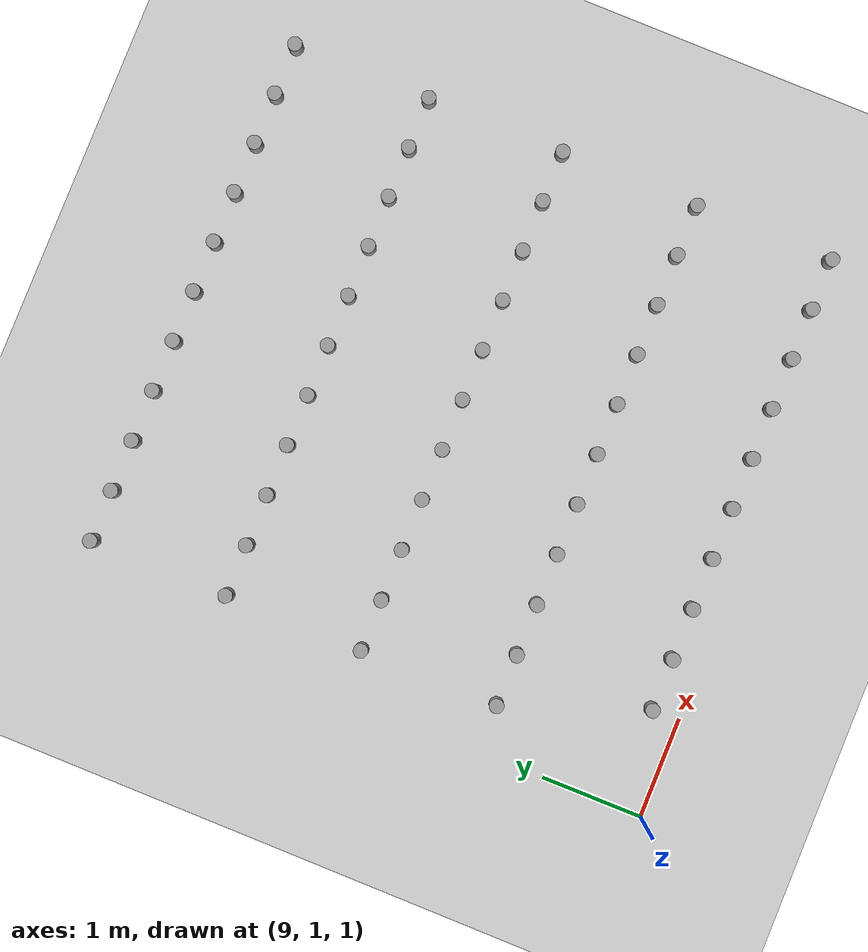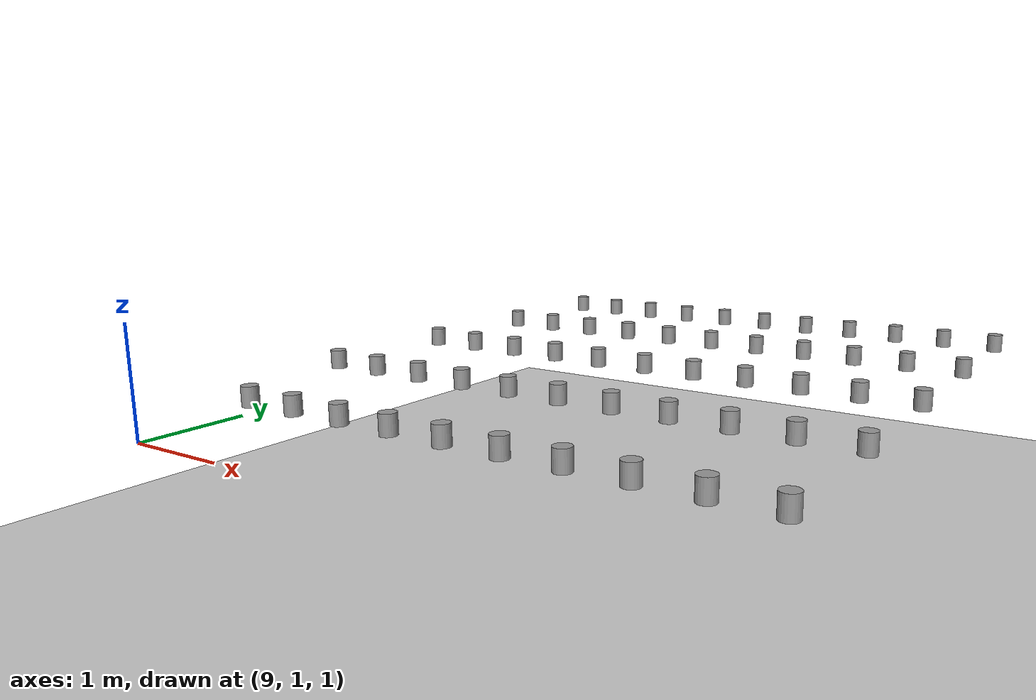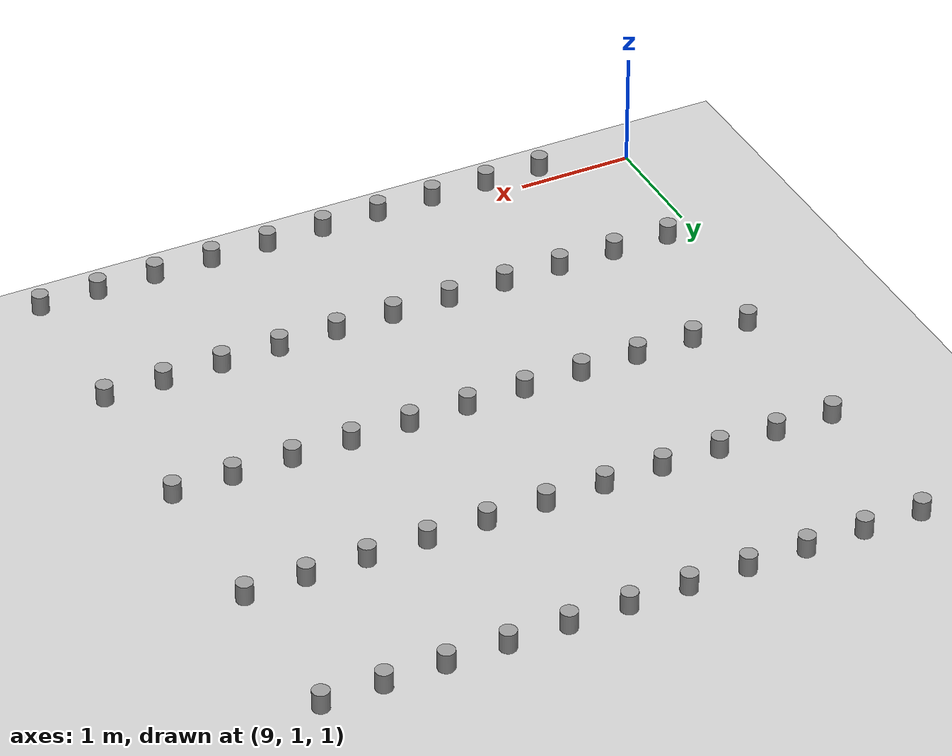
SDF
<sdf version="1.4">
 <world name="default">
  <model name="pot_266">
   <static>1</static>
   <link name="link_0">
    <collision name="collision">
     <geometry><cylinder><length>0.17</length><radius>0.07</radius></cylinder></geometry>
    </collision>
    <visual name="visual">
     <geometry><cylinder><length>0.17</length><radius>0.07</radius></cylinder></geometry>
     <material>
      <script><uri>file://media/materials/scripts/gazebo.material</uri><name>Gazebo/Grey</name></script>
      <emissive>0 0 0 1</emissive>
      <shader type="vertex"><normal_map>__default__</normal_map></shader>
      <specular>0.01 0.01 0.01 1</specular>
      <lighting>1</lighting>
      <ambient>0.1 0.1 0.1 1</ambient>
      <diffuse>0.05 0.05 0.05 1</diffuse>
     </material>
     <cast_shadows>0</cast_shadows>
    </visual>
    <pose>9.524 2.700 1.467 0.0 0.0 0.0</pose>
   </link>
  </model>
  <model name="pot_267">
   <static>1</static>
   <link name="link_0">
    <collision name="collision">
     <geometry><cylinder><length>0.17</length><radius>0.07</radius></cylinder></geometry>
    </collision>
    <visual name="visual">
     <geometry><cylinder><length>0.17</length><radius>0.07</radius></cylinder></geometry>
     <material>
      <script><uri>file://media/materials/scripts/gazebo.material</uri><name>Gazebo/Grey</name></script>
      <emissive>0 0 0 1</emissive>
      <shader type="vertex"><normal_map>__default__</normal_map></shader>
      <specular>0.01 0.01 0.01 1</specular>
      <lighting>1</lighting>
      <ambient>0.1 0.1 0.1 1</ambient>
      <diffuse>0.05 0.05 0.05 1</diffuse>
     </material>
     <cast_shadows>0</cast_shadows>
    </visual>
    <pose>9.524 4.050 1.467 0.0 0.0 0.0</pose>
   </link>
  </model>
  <model name="pot_268">
   <static>1</static>
   <link name="link_0">
    <collision name="collision">
     <geometry><cylinder><length>0.17</length><radius>0.07</radius></cylinder></geometry>
    </collision>
    <visual name="visual">
     <geometry><cylinder><length>0.17</length><radius>0.07</radius></cylinder></geometry>
     <material>
      <script><uri>file://media/materials/scripts/gazebo.material</uri><name>Gazebo/Grey</name></script>
      <emissive>0 0 0 1</emissive>
      <shader type="vertex"><normal_map>__default__</normal_map></shader>
      <specular>0.01 0.01 0.01 1</specular>
      <lighting>1</lighting>
      <ambient>0.1 0.1 0.1 1</ambient>
      <diffuse>0.05 0.05 0.05 1</diffuse>
     </material>
     <cast_shadows>0</cast_shadows>
    </visual>
    <pose>9.524 5.400 1.467 0.0 0.0 0.0</pose>
   </link>
  </model>
  <model name="pot_269">
   <static>1</static>
   <link name="link_0">
    <collision name="collision">
     <geometry><cylinder><length>0.17</length><radius>0.07</radius></cylinder></geometry>
    </collision>
    <visual name="visual">
     <geometry><cylinder><length>0.17</length><radius>0.07</radius></cylinder></geometry>
     <material>
      <script><uri>file://media/materials/scripts/gazebo.material</uri><name>Gazebo/Grey</name></script>
      <emissive>0 0 0 1</emissive>
      <shader type="vertex"><normal_map>__default__</normal_map></shader>
      <specular>0.01 0.01 0.01 1</specular>
      <lighting>1</lighting>
      <ambient>0.1 0.1 0.1 1</ambient>
      <diffuse>0.05 0.05 0.05 1</diffuse>
     </material>
     <cast_shadows>0</cast_shadows>
    </visual>
    <pose>9.524 6.750 1.467 0.0 0.0 0.0</pose>
   </link>
  </model>
  <model name="pot_270">
   <static>1</static>
   <link name="link_0">
    <collision name="collision">
     <geometry><cylinder><length>0.17</length><radius>0.07</radius></cylinder></geometry>
    </collision>
    <visual name="visual">
     <geometry><cylinder><length>0.17</length><radius>0.07</radius></cylinder></geometry>
     <material>
      <script><uri>file://media/materials/scripts/gazebo.material</uri><name>Gazebo/Grey</name></script>
      <emissive>0 0 0 1</emissive>
      <shader type="vertex"><normal_map>__default__</normal_map></shader>
      <specular>0.01 0.01 0.01 1</specular>
      <lighting>1</lighting>
      <ambient>0.1 0.1 0.1 1</ambient>
      <diffuse>0.05 0.05 0.05 1</diffuse>
     </material>
     <cast_shadows>0</cast_shadows>
    </visual>
    <pose>10.024 1.350 1.467 0.0 0.0 0.0</pose>
   </link>
  </model>
  <model name="pot_271">
   <static>1</static>
   <link name="link_0">
    <collision name="collision">
     <geometry><cylinder><length>0.17</length><radius>0.07</radius></cylinder></geometry>
    </collision>
    <visual name="visual">
     <geometry><cylinder><length>0.17</length><radius>0.07</radius></cylinder></geometry>
     <material>
      <script><uri>file://media/materials/scripts/gazebo.material</uri><name>Gazebo/Grey</name></script>
      <emissive>0 0 0 1</emissive>
      <shader type="vertex"><normal_map>__default__</normal_map></shader>
      <specular>0.01 0.01 0.01 1</specular>
      <lighting>1</lighting>
      <ambient>0.1 0.1 0.1 1</ambient>
      <diffuse>0.05 0.05 0.05 1</diffuse>
     </material>
     <cast_shadows>0</cast_shadows>
    </visual>
    <pose>10.024 2.700 1.467 0.0 0.0 0.0</pose>
   </link>
  </model>
  <model name="pot_272">
   <static>1</static>
   <link name="link_0">
    <collision name="collision">
     <geometry><cylinder><length>0.17</length><radius>0.07</radius></cylinder></geometry>
    </collision>
    <visual name="visual">
     <geometry><cylinder><length>0.17</length><radius>0.07</radius></cylinder></geometry>
     <material>
      <script><uri>file://media/materials/scripts/gazebo.material</uri><name>Gazebo/Grey</name></script>
      <emissive>0 0 0 1</emissive>
      <shader type="vertex"><normal_map>__default__</normal_map></shader>
      <specular>0.01 0.01 0.01 1</specular>
      <lighting>1</lighting>
      <ambient>0.1 0.1 0.1 1</ambient>
      <diffuse>0.05 0.05 0.05 1</diffuse>
     </material>
     <cast_shadows>0</cast_shadows>
    </visual>
    <pose>10.024 4.050 1.467 0.0 0.0 0.0</pose>
   </link>
  </model>
  <model name="pot_273">
   <static>1</static>
   <link name="link_0">
    <collision name="collision">
     <geometry><cylinder><length>0.17</length><radius>0.07</radius></cylinder></geometry>
    </collision>
    <visual name="visual">
     <geometry><cylinder><length>0.17</length><radius>0.07</radius></cylinder></geometry>
     <material>
      <script><uri>file://media/materials/scripts/gazebo.material</uri><name>Gazebo/Grey</name></script>
      <emissive>0 0 0 1</emissive>
      <shader type="vertex"><normal_map>__default__</normal_map></shader>
      <specular>0.01 0.01 0.01 1</specular>
      <lighting>1</lighting>
      <ambient>0.1 0.1 0.1 1</ambient>
      <diffuse>0.05 0.05 0.05 1</diffuse>
     </material>
     <cast_shadows>0</cast_shadows>
    </visual>
    <pose>10.024 5.400 1.467 0.0 0.0 0.0</pose>
   </link>
  </model>
  <model name="pot_274">
   <static>1</static>
   <link name="link_0">
    <collision name="collision">
     <geometry><cylinder><length>0.17</length><radius>0.07</radius></cylinder></geometry>
    </collision>
    <visual name="visual">
     <geometry><cylinder><length>0.17</length><radius>0.07</radius></cylinder></geometry>
     <material>
      <script><uri>file://media/materials/scripts/gazebo.material</uri><name>Gazebo/Grey</name></script>
      <emissive>0 0 0 1</emissive>
      <shader type="vertex"><normal_map>__default__</normal_map></shader>
      <specular>0.01 0.01 0.01 1</specular>
      <lighting>1</lighting>
      <ambient>0.1 0.1 0.1 1</ambient>
      <diffuse>0.05 0.05 0.05 1</diffuse>
     </material>
     <cast_shadows>0</cast_shadows>
    </visual>
    <pose>10.024 6.750 1.467 0.0 0.0 0.0</pose>
   </link>
  </model>
  <model name="pot_275">
   <static>1</static>
   <link name="link_0">
    <collision name="collision">
     <geometry><cylinder><length>0.17</length><radius>0.07</radius></cylinder></geometry>
    </collision>
    <visual name="visual">
     <geometry><cylinder><length>0.17</length><radius>0.07</radius></cylinder></geometry>
     <material>
      <script><uri>file://media/materials/scripts/gazebo.material</uri><name>Gazebo/Grey</name></script>
      <emissive>0 0 0 1</emissive>
      <shader type="vertex"><normal_map>__default__</normal_map></shader>
      <specular>0.01 0.01 0.01 1</specular>
      <lighting>1</lighting>
      <ambient>0.1 0.1 0.1 1</ambient>
      <diffuse>0.05 0.05 0.05 1</diffuse>
     </material>
     <cast_shadows>0</cast_shadows>
    </visual>
    <pose>10.524 1.350 1.467 0.0 0.0 0.0</pose>
   </link>
  </model>
  <model name="pot_276">
   <static>1</static>
   <link name="link_0">
    <collision name="collision">
     <geometry><cylinder><length>0.17</length><radius>0.07</radius></cylinder></geometry>
    </collision>
    <visual name="visual">
     <geometry><cylinder><length>0.17</length><radius>0.07</radius></cylinder></geometry>
     <material>
      <script><uri>file://media/materials/scripts/gazebo.material</uri><name>Gazebo/Grey</name></script>
      <emissive>0 0 0 1</emissive>
      <shader type="vertex"><normal_map>__default__</normal_map></shader>
      <specular>0.01 0.01 0.01 1</specular>
      <lighting>1</lighting>
      <ambient>0.1 0.1 0.1 1</ambient>
      <diffuse>0.05 0.05 0.05 1</diffuse>
     </material>
     <cast_shadows>0</cast_shadows>
    </visual>
    <pose>10.524 2.700 1.467 0.0 0.0 0.0</pose>
   </link>
  </model>
  <model name="pot_277">
   <static>1</static>
   <link name="link_0">
    <collision name="collision">
     <geometry><cylinder><length>0.17</length><radius>0.07</radius></cylinder></geometry>
    </collision>
    <visual name="visual">
     <geometry><cylinder><length>0.17</length><radius>0.07</radius></cylinder></geometry>
     <material>
      <script><uri>file://media/materials/scripts/gazebo.material</uri><name>Gazebo/Grey</name></script>
      <emissive>0 0 0 1</emissive>
      <shader type="vertex"><normal_map>__default__</normal_map></shader>
      <specular>0.01 0.01 0.01 1</specular>
      <lighting>1</lighting>
      <ambient>0.1 0.1 0.1 1</ambient>
      <diffuse>0.05 0.05 0.05 1</diffuse>
     </material>
     <cast_shadows>0</cast_shadows>
    </visual>
    <pose>10.524 4.050 1.467 0.0 0.0 0.0</pose>
   </link>
  </model>
  <model name="pot_278">
   <static>1</static>
   <link name="link_0">
    <collision name="collision">
     <geometry><cylinder><length>0.17</length><radius>0.07</radius></cylinder></geometry>
    </collision>
    <visual name="visual">
     <geometry><cylinder><length>0.17</length><radius>0.07</radius></cylinder></geometry>
     <material>
      <script><uri>file://media/materials/scripts/gazebo.material</uri><name>Gazebo/Grey</name></script>
      <emissive>0 0 0 1</emissive>
      <shader type="vertex"><normal_map>__default__</normal_map></shader>
      <specular>0.01 0.01 0.01 1</specular>
      <lighting>1</lighting>
      <ambient>0.1 0.1 0.1 1</ambient>
      <diffuse>0.05 0.05 0.05 1</diffuse>
     </material>
     <cast_shadows>0</cast_shadows>
    </visual>
    <pose>10.524 5.400 1.467 0.0 0.0 0.0</pose>
   </link>
  </model>
  <model name="pot_279">
   <static>1</static>
   <link name="link_0">
    <collision name="collision">
     <geometry><cylinder><length>0.17</length><radius>0.07</radius></cylinder></geometry>
    </collision>
    <visual name="visual">
     <geometry><cylinder><length>0.17</length><radius>0.07</radius></cylinder></geometry>
     <material>
      <script><uri>file://media/materials/scripts/gazebo.material</uri><name>Gazebo/Grey</name></script>
      <emissive>0 0 0 1</emissive>
      <shader type="vertex"><normal_map>__default__</normal_map></shader>
      <specular>0.01 0.01 0.01 1</specular>
      <lighting>1</lighting>
      <ambient>0.1 0.1 0.1 1</ambient>
      <diffuse>0.05 0.05 0.05 1</diffuse>
     </material>
     <cast_shadows>0</cast_shadows>
    </visual>
    <pose>10.524 6.750 1.467 0.0 0.0 0.0</pose>
   </link>
  </model>
  <model name="pot_280">
   <static>1</static>
   <link name="link_0">
    <collision name="collision">
     <geometry><cylinder><length>0.17</length><radius>0.07</radius></cylinder></geometry>
    </collision>
    <visual name="visual">
     <geometry><cylinder><length>0.17</length><radius>0.07</radius></cylinder></geometry>
     <material>
      <script><uri>file://media/materials/scripts/gazebo.material</uri><name>Gazebo/Grey</name></script>
      <emissive>0 0 0 1</emissive>
      <shader type="vertex"><normal_map>__default__</normal_map></shader>
      <specular>0.01 0.01 0.01 1</specular>
      <lighting>1</lighting>
      <ambient>0.1 0.1 0.1 1</ambient>
      <diffuse>0.05 0.05 0.05 1</diffuse>
     </material>
     <cast_shadows>0</cast_shadows>
    </visual>
    <pose>11.024 1.350 1.467 0.0 0.0 0.0</pose>
   </link>
  </model>
  <model name="pot_281">
   <static>1</static>
   <link name="link_0">
    <collision name="collision">
     <geometry><cylinder><length>0.17</length><radius>0.07</radius></cylinder></geometry>
    </collision>
    <visual name="visual">
     <geometry><cylinder><length>0.17</length><radius>0.07</radius></cylinder></geometry>
     <material>
      <script><uri>file://media/materials/scripts/gazebo.material</uri><name>Gazebo/Grey</name></script>
      <emissive>0 0 0 1</emissive>
      <shader type="vertex"><normal_map>__default__</normal_map></shader>
      <specular>0.01 0.01 0.01 1</specular>
      <lighting>1</lighting>
      <ambient>0.1 0.1 0.1 1</ambient>
      <diffuse>0.05 0.05 0.05 1</diffuse>
     </material>
     <cast_shadows>0</cast_shadows>
    </visual>
    <pose>11.024 2.700 1.467 0.0 0.0 0.0</pose>
   </link>
  </model>
  <model name="pot_282">
   <static>1</static>
   <link name="link_0">
    <collision name="collision">
     <geometry><cylinder><length>0.17</length><radius>0.07</radius></cylinder></geometry>
    </collision>
    <visual name="visual">
     <geometry><cylinder><length>0.17</length><radius>0.07</radius></cylinder></geometry>
     <material>
      <script><uri>file://media/materials/scripts/gazebo.material</uri><name>Gazebo/Grey</name></script>
      <emissive>0 0 0 1</emissive>
      <shader type="vertex"><normal_map>__default__</normal_map></shader>
      <specular>0.01 0.01 0.01 1</specular>
      <lighting>1</lighting>
      <ambient>0.1 0.1 0.1 1</ambient>
      <diffuse>0.05 0.05 0.05 1</diffuse>
     </material>
     <cast_shadows>0</cast_shadows>
    </visual>
    <pose>11.024 4.050 1.467 0.0 0.0 0.0</pose>
   </link>
  </model>
  <model name="pot_283">
   <static>1</static>
   <link name="link_0">
    <collision name="collision">
     <geometry><cylinder><length>0.17</length><radius>0.07</radius></cylinder></geometry>
    </collision>
    <visual name="visual">
     <geometry><cylinder><length>0.17</length><radius>0.07</radius></cylinder></geometry>
     <material>
      <script><uri>file://media/materials/scripts/gazebo.material</uri><name>Gazebo/Grey</name></script>
      <emissive>0 0 0 1</emissive>
      <shader type="vertex"><normal_map>__default__</normal_map></shader>
      <specular>0.01 0.01 0.01 1</specular>
      <lighting>1</lighting>
      <ambient>0.1 0.1 0.1 1</ambient>
      <diffuse>0.05 0.05 0.05 1</diffuse>
     </material>
     <cast_shadows>0</cast_shadows>
    </visual>
    <pose>11.024 5.400 1.467 0.0 0.0 0.0</pose>
   </link>
  </model>
  <model name="pot_284">
   <static>1</static>
   <link name="link_0">
    <collision name="collision">
     <geometry><cylinder><length>0.17</length><radius>0.07</radius></cylinder></geometry>
    </collision>
    <visual name="visual">
     <geometry><cylinder><length>0.17</length><radius>0.07</radius></cylinder></geometry>
     <material>
      <script><uri>file://media/materials/scripts/gazebo.material</uri><name>Gazebo/Grey</name></script>
      <emissive>0 0 0 1</emissive>
      <shader type="vertex"><normal_map>__default__</normal_map></shader>
      <specular>0.01 0.01 0.01 1</specular>
      <lighting>1</lighting>
      <ambient>0.1 0.1 0.1 1</ambient>
      <diffuse>0.05 0.05 0.05 1</diffuse>
     </material>
     <cast_shadows>0</cast_shadows>
    </visual>
    <pose>11.024 6.750 1.467 0.0 0.0 0.0</pose>
   </link>
  </model>
  <model name="pot_285">
   <static>1</static>
   <link name="link_0">
    <collision name="collision">
     <geometry><cylinder><length>0.17</length><radius>0.07</radius></cylinder></geometry>
    </collision>
    <visual name="visual">
     <geometry><cylinder><length>0.17</length><radius>0.07</radius></cylinder></geometry>
     <material>
      <script><uri>file://media/materials/scripts/gazebo.material</uri><name>Gazebo/Grey</name></script>
      <emissive>0 0 0 1</emissive>
      <shader type="vertex"><normal_map>__default__</normal_map></shader>
      <specular>0.01 0.01 0.01 1</specular>
      <lighting>1</lighting>
      <ambient>0.1 0.1 0.1 1</ambient>
      <diffuse>0.05 0.05 0.05 1</diffuse>
     </material>
     <cast_shadows>0</cast_shadows>
    </visual>
    <pose>11.524 1.350 1.467 0.0 0.0 0.0</pose>
   </link>
  </model>
  <model name="pot_286">
   <static>1</static>
   <link name="link_0">
    <collision name="collision">
     <geometry><cylinder><length>0.17</length><radius>0.07</radius></cylinder></geometry>
    </collision>
    <visual name="visual">
     <geometry><cylinder><length>0.17</length><radius>0.07</radius></cylinder></geometry>
     <material>
      <script><uri>file://media/materials/scripts/gazebo.material</uri><name>Gazebo/Grey</name></script>
      <emissive>0 0 0 1</emissive>
      <shader type="vertex"><normal_map>__default__</normal_map></shader>
      <specular>0.01 0.01 0.01 1</specular>
      <lighting>1</lighting>
      <ambient>0.1 0.1 0.1 1</ambient>
      <diffuse>0.05 0.05 0.05 1</diffuse>
     </material>
     <cast_shadows>0</cast_shadows>
    </visual>
    <pose>11.524 2.700 1.467 0.0 0.0 0.0</pose>
   </link>
  </model>
  <model name="pot_287">
   <static>1</static>
   <link name="link_0">
    <collision name="collision">
     <geometry><cylinder><length>0.17</length><radius>0.07</radius></cylinder></geometry>
    </collision>
    <visual name="visual">
     <geometry><cylinder><length>0.17</length><radius>0.07</radius></cylinder></geometry>
     <material>
      <script><uri>file://media/materials/scripts/gazebo.material</uri><name>Gazebo/Grey</name></script>
      <emissive>0 0 0 1</emissive>
      <shader type="vertex"><normal_map>__default__</normal_map></shader>
      <specular>0.01 0.01 0.01 1</specular>
      <lighting>1</lighting>
      <ambient>0.1 0.1 0.1 1</ambient>
      <diffuse>0.05 0.05 0.05 1</diffuse>
     </material>
     <cast_shadows>0</cast_shadows>
    </visual>
    <pose>11.524 4.050 1.467 0.0 0.0 0.0</pose>
   </link>
  </model>
  <model name="pot_288">
   <static>1</static>
   <link name="link_0">
    <collision name="collision">
     <geometry><cylinder><length>0.17</length><radius>0.07</radius></cylinder></geometry>
    </collision>
    <visual name="visual">
     <geometry><cylinder><length>0.17</length><radius>0.07</radius></cylinder></geometry>
     <material>
      <script><uri>file://media/materials/scripts/gazebo.material</uri><name>Gazebo/Grey</name></script>
      <emissive>0 0 0 1</emissive>
      <shader type="vertex"><normal_map>__default__</normal_map></shader>
      <specular>0.01 0.01 0.01 1</specular>
      <lighting>1</lighting>
      <ambient>0.1 0.1 0.1 1</ambient>
      <diffuse>0.05 0.05 0.05 1</diffuse>
     </material>
     <cast_shadows>0</cast_shadows>
    </visual>
    <pose>11.524 5.400 1.467 0.0 0.0 0.0</pose>
   </link>
  </model>
  <model name="pot_289">
   <static>1</static>
   <link name="link_0">
    <collision name="collision">
     <geometry><cylinder><length>0.17</length><radius>0.07</radius></cylinder></geometry>
    </collision>
    <visual name="visual">
     <geometry><cylinder><length>0.17</length><radius>0.07</radius></cylinder></geometry>
     <material>
      <script><uri>file://media/materials/scripts/gazebo.material</uri><name>Gazebo/Grey</name></script>
      <emissive>0 0 0 1</emissive>
      <shader type="vertex"><normal_map>__default__</normal_map></shader>
      <specular>0.01 0.01 0.01 1</specular>
      <lighting>1</lighting>
      <ambient>0.1 0.1 0.1 1</ambient>
      <diffuse>0.05 0.05 0.05 1</diffuse>
     </material>
     <cast_shadows>0</cast_shadows>
    </visual>
    <pose>11.524 6.750 1.467 0.0 0.0 0.0</pose>
   </link>
  </model>
  <model name="pot_290">
   <static>1</static>
   <link name="link_0">
    <collision name="collision">
     <geometry><cylinder><length>0.17</length><radius>0.07</radius></cylinder></geometry>
    </collision>
    <visual name="visual">
     <geometry><cylinder><length>0.17</length><radius>0.07</radius></cylinder></geometry>
     <material>
      <script><uri>file://media/materials/scripts/gazebo.material</uri><name>Gazebo/Grey</name></script>
      <emissive>0 0 0 1</emissive>
      <shader type="vertex"><normal_map>__default__</normal_map></shader>
      <specular>0.01 0.01 0.01 1</specular>
      <lighting>1</lighting>
      <ambient>0.1 0.1 0.1 1</ambient>
      <diffuse>0.05 0.05 0.05 1</diffuse>
     </material>
     <cast_shadows>0</cast_shadows>
    </visual>
    <pose>12.024 1.350 1.467 0.0 0.0 0.0</pose>
   </link>
  </model>
  <model name="pot_291">
   <static>1</static>
   <link name="link_0">
    <collision name="collision">
     <geometry><cylinder><length>0.17</length><radius>0.07</radius></cylinder></geometry>
    </collision>
    <visual name="visual">
     <geometry><cylinder><length>0.17</length><radius>0.07</radius></cylinder></geometry>
     <material>
      <script><uri>file://media/materials/scripts/gazebo.material</uri><name>Gazebo/Grey</name></script>
      <emissive>0 0 0 1</emissive>
      <shader type="vertex"><normal_map>__default__</normal_map></shader>
      <specular>0.01 0.01 0.01 1</specular>
      <lighting>1</lighting>
      <ambient>0.1 0.1 0.1 1</ambient>
      <diffuse>0.05 0.05 0.05 1</diffuse>
     </material>
     <cast_shadows>0</cast_shadows>
    </visual>
    <pose>12.024 2.700 1.467 0.0 0.0 0.0</pose>
   </link>
  </model>
  <model name="pot_292">
   <static>1</static>
   <link name="link_0">
    <collision name="collision">
     <geometry><cylinder><length>0.17</length><radius>0.07</radius></cylinder></geometry>
    </collision>
    <visual name="visual">
     <geometry><cylinder><length>0.17</length><radius>0.07</radius></cylinder></geometry>
     <material>
      <script><uri>file://media/materials/scripts/gazebo.material</uri><name>Gazebo/Grey</name></script>
      <emissive>0 0 0 1</emissive>
      <shader type="vertex"><normal_map>__default__</normal_map></shader>
      <specular>0.01 0.01 0.01 1</specular>
      <lighting>1</lighting>
      <ambient>0.1 0.1 0.1 1</ambient>
      <diffuse>0.05 0.05 0.05 1</diffuse>
     </material>
     <cast_shadows>0</cast_shadows>
    </visual>
    <pose>12.024 4.050 1.467 0.0 0.0 0.0</pose>
   </link>
  </model>
  <model name="pot_293">
   <static>1</static>
   <link name="link_0">
    <collision name="collision">
     <geometry><cylinder><length>0.17</length><radius>0.07</radius></cylinder></geometry>
    </collision>
    <visual name="visual">
     <geometry><cylinder><length>0.17</length><radius>0.07</radius></cylinder></geometry>
     <material>
      <script><uri>file://media/materials/scripts/gazebo.material</uri><name>Gazebo/Grey</name></script>
      <emissive>0 0 0 1</emissive>
      <shader type="vertex"><normal_map>__default__</normal_map></shader>
      <specular>0.01 0.01 0.01 1</specular>
      <lighting>1</lighting>
      <ambient>0.1 0.1 0.1 1</ambient>
      <diffuse>0.05 0.05 0.05 1</diffuse>
     </material>
     <cast_shadows>0</cast_shadows>
    </visual>
    <pose>12.024 5.400 1.467 0.0 0.0 0.0</pose>
   </link>
  </model>
  <model name="pot_294">
   <static>1</static>
   <link name="link_0">
    <collision name="collision">
     <geometry><cylinder><length>0.17</length><radius>0.07</radius></cylinder></geometry>
    </collision>
    <visual name="visual">
     <geometry><cylinder><length>0.17</length><radius>0.07</radius></cylinder></geometry>
     <material>
      <script><uri>file://media/materials/scripts/gazebo.material</uri><name>Gazebo/Grey</name></script>
      <emissive>0 0 0 1</emissive>
      <shader type="vertex"><normal_map>__default__</normal_map></shader>
      <specular>0.01 0.01 0.01 1</specular>
      <lighting>1</lighting>
      <ambient>0.1 0.1 0.1 1</ambient>
      <diffuse>0.05 0.05 0.05 1</diffuse>
     </material>
     <cast_shadows>0</cast_shadows>
    </visual>
    <pose>12.024 6.750 1.467 0.0 0.0 0.0</pose>
   </link>
  </model>
  <model name="pot_295">
   <static>1</static>
   <link name="link_0">
    <collision name="collision">
     <geometry><cylinder><length>0.17</length><radius>0.07</radius></cylinder></geometry>
    </collision>
    <visual name="visual">
     <geometry><cylinder><length>0.17</length><radius>0.07</radius></cylinder></geometry>
     <material>
      <script><uri>file://media/materials/scripts/gazebo.material</uri><name>Gazebo/Grey</name></script>
      <emissive>0 0 0 1</emissive>
      <shader type="vertex"><normal_map>__default__</normal_map></shader>
      <specular>0.01 0.01 0.01 1</specular>
      <lighting>1</lighting>
      <ambient>0.1 0.1 0.1 1</ambient>
      <diffuse>0.05 0.05 0.05 1</diffuse>
     </material>
     <cast_shadows>0</cast_shadows>
    </visual>
    <pose>12.524 1.350 1.467 0.0 0.0 0.0</pose>
   </link>
  </model>
  <model name="pot_296">
   <static>1</static>
   <link name="link_0">
    <collision name="collision">
     <geometry><cylinder><length>0.17</length><radius>0.07</radius></cylinder></geometry>
    </collision>
    <visual name="visual">
     <geometry><cylinder><length>0.17</length><radius>0.07</radius></cylinder></geometry>
     <material>
      <script><uri>file://media/materials/scripts/gazebo.material</uri><name>Gazebo/Grey</name></script>
      <emissive>0 0 0 1</emissive>
      <shader type="vertex"><normal_map>__default__</normal_map></shader>
      <specular>0.01 0.01 0.01 1</specular>
      <lighting>1</lighting>
      <ambient>0.1 0.1 0.1 1</ambient>
      <diffuse>0.05 0.05 0.05 1</diffuse>
     </material>
     <cast_shadows>0</cast_shadows>
    </visual>
    <pose>12.524 2.700 1.467 0.0 0.0 0.0</pose>
   </link>
  </model>
  <model name="pot_297">
   <static>1</static>
   <link name="link_0">
    <collision name="collision">
     <geometry><cylinder><length>0.17</length><radius>0.07</radius></cylinder></geometry>
    </collision>
    <visual name="visual">
     <geometry><cylinder><length>0.17</length><radius>0.07</radius></cylinder></geometry>
     <material>
      <script><uri>file://media/materials/scripts/gazebo.material</uri><name>Gazebo/Grey</name></script>
      <emissive>0 0 0 1</emissive>
      <shader type="vertex"><normal_map>__default__</normal_map></shader>
      <specular>0.01 0.01 0.01 1</specular>
      <lighting>1</lighting>
      <ambient>0.1 0.1 0.1 1</ambient>
      <diffuse>0.05 0.05 0.05 1</diffuse>
     </material>
     <cast_shadows>0</cast_shadows>
    </visual>
    <pose>12.524 4.050 1.467 0.0 0.0 0.0</pose>
   </link>
  </model>
  <model name="pot_298">
   <static>1</static>
   <link name="link_0">
    <collision name="collision">
     <geometry><cylinder><length>0.17</length><radius>0.07</radius></cylinder></geometry>
    </collision>
    <visual name="visual">
     <geometry><cylinder><length>0.17</length><radius>0.07</radius></cylinder></geometry>
     <material>
      <script><uri>file://media/materials/scripts/gazebo.material</uri><name>Gazebo/Grey</name></script>
      <emissive>0 0 0 1</emissive>
      <shader type="vertex"><normal_map>__default__</normal_map></shader>
      <specular>0.01 0.01 0.01 1</specular>
      <lighting>1</lighting>
      <ambient>0.1 0.1 0.1 1</ambient>
      <diffuse>0.05 0.05 0.05 1</diffuse>
     </material>
     <cast_shadows>0</cast_shadows>
    </visual>
    <pose>12.524 5.400 1.467 0.0 0.0 0.0</pose>
   </link>
  </model>
  <model name="pot_299">
   <static>1</static>
   <link name="link_0">
    <collision name="collision">
     <geometry><cylinder><length>0.17</length><radius>0.07</radius></cylinder></geometry>
    </collision>
    <visual name="visual">
     <geometry><cylinder><length>0.17</length><radius>0.07</radius></cylinder></geometry>
     <material>
      <script><uri>file://media/materials/scripts/gazebo.material</uri><name>Gazebo/Grey</name></script>
      <emissive>0 0 0 1</emissive>
      <shader type="vertex"><normal_map>__default__</normal_map></shader>
      <specular>0.01 0.01 0.01 1</specular>
      <lighting>1</lighting>
      <ambient>0.1 0.1 0.1 1</ambient>
      <diffuse>0.05 0.05 0.05 1</diffuse>
     </material>
     <cast_shadows>0</cast_shadows>
    </visual>
    <pose>12.524 6.750 1.467 0.0 0.0 0.0</pose>
   </link>
  </model>
  <model name="pot_300">
   <static>1</static>
   <link name="link_0">
    <collision name="collision">
     <geometry><cylinder><length>0.17</length><radius>0.07</radius></cylinder></geometry>
    </collision>
    <visual name="visual">
     <geometry><cylinder><length>0.17</length><radius>0.07</radius></cylinder></geometry>
     <material>
      <script><uri>file://media/materials/scripts/gazebo.material</uri><name>Gazebo/Grey</name></script>
      <emissive>0 0 0 1</emissive>
      <shader type="vertex"><normal_map>__default__</normal_map></shader>
      <specular>0.01 0.01 0.01 1</specular>
      <lighting>1</lighting>
      <ambient>0.1 0.1 0.1 1</ambient>
      <diffuse>0.05 0.05 0.05 1</diffuse>
     </material>
     <cast_shadows>0</cast_shadows>
    </visual>
    <pose>13.024 1.350 1.467 0.0 0.0 0.0</pose>
   </link>
  </model>
  <model name="pot_301">
   <static>1</static>
   <link name="link_0">
    <collision name="collision">
     <geometry><cylinder><length>0.17</length><radius>0.07</radius></cylinder></geometry>
    </collision>
    <visual name="visual">
     <geometry><cylinder><length>0.17</length><radius>0.07</radius></cylinder></geometry>
     <material>
      <script><uri>file://media/materials/scripts/gazebo.material</uri><name>Gazebo/Grey</name></script>
      <emissive>0 0 0 1</emissive>
      <shader type="vertex"><normal_map>__default__</normal_map></shader>
      <specular>0.01 0.01 0.01 1</specular>
      <lighting>1</lighting>
      <ambient>0.1 0.1 0.1 1</ambient>
      <diffuse>0.05 0.05 0.05 1</diffuse>
     </material>
     <cast_shadows>0</cast_shadows>
    </visual>
    <pose>13.024 2.700 1.467 0.0 0.0 0.0</pose>
   </link>
  </model>
  <model name="pot_302">
   <static>1</static>
   <link name="link_0">
    <collision name="collision">
     <geometry><cylinder><length>0.17</length><radius>0.07</radius></cylinder></geometry>
    </collision>
    <visual name="visual">
     <geometry><cylinder><length>0.17</length><radius>0.07</radius></cylinder></geometry>
     <material>
      <script><uri>file://media/materials/scripts/gazebo.material</uri><name>Gazebo/Grey</name></script>
      <emissive>0 0 0 1</emissive>
      <shader type="vertex"><normal_map>__default__</normal_map></shader>
      <specular>0.01 0.01 0.01 1</specular>
      <lighting>1</lighting>
      <ambient>0.1 0.1 0.1 1</ambient>
      <diffuse>0.05 0.05 0.05 1</diffuse>
     </material>
     <cast_shadows>0</cast_shadows>
    </visual>
    <pose>13.024 4.050 1.467 0.0 0.0 0.0</pose>
   </link>
  </model>
  <model name="pot_303">
   <static>1</static>
   <link name="link_0">
    <collision name="collision">
     <geometry><cylinder><length>0.17</length><radius>0.07</radius></cylinder></geometry>
    </collision>
    <visual name="visual">
     <geometry><cylinder><length>0.17</length><radius>0.07</radius></cylinder></geometry>
     <material>
      <script><uri>file://media/materials/scripts/gazebo.material</uri><name>Gazebo/Grey</name></script>
      <emissive>0 0 0 1</emissive>
      <shader type="vertex"><normal_map>__default__</normal_map></shader>
      <specular>0.01 0.01 0.01 1</specular>
      <lighting>1</lighting>
      <ambient>0.1 0.1 0.1 1</ambient>
      <diffuse>0.05 0.05 0.05 1</diffuse>
     </material>
     <cast_shadows>0</cast_shadows>
    </visual>
    <pose>13.024 5.400 1.467 0.0 0.0 0.0</pose>
   </link>
  </model>
  <model name="pot_304">
   <static>1</static>
   <link name="link_0">
    <collision name="collision">
     <geometry><cylinder><length>0.17</length><radius>0.07</radius></cylinder></geometry>
    </collision>
    <visual name="visual">
     <geometry><cylinder><length>0.17</length><radius>0.07</radius></cylinder></geometry>
     <material>
      <script><uri>file://media/materials/scripts/gazebo.material</uri><name>Gazebo/Grey</name></script>
      <emissive>0 0 0 1</emissive>
      <shader type="vertex"><normal_map>__default__</normal_map></shader>
      <specular>0.01 0.01 0.01 1</specular>
      <lighting>1</lighting>
      <ambient>0.1 0.1 0.1 1</ambient>
      <diffuse>0.05 0.05 0.05 1</diffuse>
     </material>
     <cast_shadows>0</cast_shadows>
    </visual>
    <pose>13.024 6.750 1.467 0.0 0.0 0.0</pose>
   </link>
  </model>
  <model name="pot_305">
   <static>1</static>
   <link name="link_0">
    <collision name="collision">
     <geometry><cylinder><length>0.17</length><radius>0.07</radius></cylinder></geometry>
    </collision>
    <visual name="visual">
     <geometry><cylinder><length>0.17</length><radius>0.07</radius></cylinder></geometry>
     <material>
      <script><uri>file://media/materials/scripts/gazebo.material</uri><name>Gazebo/Grey</name></script>
      <emissive>0 0 0 1</emissive>
      <shader type="vertex"><normal_map>__default__</normal_map></shader>
      <specular>0.01 0.01 0.01 1</specular>
      <lighting>1</lighting>
      <ambient>0.1 0.1 0.1 1</ambient>
      <diffuse>0.05 0.05 0.05 1</diffuse>
     </material>
     <cast_shadows>0</cast_shadows>
    </visual>
    <pose>13.524 1.350 1.467 0.0 0.0 0.0</pose>
   </link>
  </model>
  <model name="pot_306">
   <static>1</static>
   <link name="link_0">
    <collision name="collision">
     <geometry><cylinder><length>0.17</length><radius>0.07</radius></cylinder></geometry>
    </collision>
    <visual name="visual">
     <geometry><cylinder><length>0.17</length><radius>0.07</radius></cylinder></geometry>
     <material>
      <script><uri>file://media/materials/scripts/gazebo.material</uri><name>Gazebo/Grey</name></script>
      <emissive>0 0 0 1</emissive>
      <shader type="vertex"><normal_map>__default__</normal_map></shader>
      <specular>0.01 0.01 0.01 1</specular>
      <lighting>1</lighting>
      <ambient>0.1 0.1 0.1 1</ambient>
      <diffuse>0.05 0.05 0.05 1</diffuse>
     </material>
     <cast_shadows>0</cast_shadows>
    </visual>
    <pose>13.524 2.700 1.467 0.0 0.0 0.0</pose>
   </link>
  </model>
  <model name="pot_307">
   <static>1</static>
   <link name="link_0">
    <collision name="collision">
     <geometry><cylinder><length>0.17</length><radius>0.07</radius></cylinder></geometry>
    </collision>
    <visual name="visual">
     <geometry><cylinder><length>0.17</length><radius>0.07</radius></cylinder></geometry>
     <material>
      <script><uri>file://media/materials/scripts/gazebo.material</uri><name>Gazebo/Grey</name></script>
      <emissive>0 0 0 1</emissive>
      <shader type="vertex"><normal_map>__default__</normal_map></shader>
      <specular>0.01 0.01 0.01 1</specular>
      <lighting>1</lighting>
      <ambient>0.1 0.1 0.1 1</ambient>
      <diffuse>0.05 0.05 0.05 1</diffuse>
     </material>
     <cast_shadows>0</cast_shadows>
    </visual>
    <pose>13.524 4.050 1.467 0.0 0.0 0.0</pose>
   </link>
  </model>
  <model name="pot_308">
   <static>1</static>
   <link name="link_0">
    <collision name="collision">
     <geometry><cylinder><length>0.17</length><radius>0.07</radius></cylinder></geometry>
    </collision>
    <visual name="visual">
     <geometry><cylinder><length>0.17</length><radius>0.07</radius></cylinder></geometry>
     <material>
      <script><uri>file://media/materials/scripts/gazebo.material</uri><name>Gazebo/Grey</name></script>
      <emissive>0 0 0 1</emissive>
      <shader type="vertex"><normal_map>__default__</normal_map></shader>
      <specular>0.01 0.01 0.01 1</specular>
      <lighting>1</lighting>
      <ambient>0.1 0.1 0.1 1</ambient>
      <diffuse>0.05 0.05 0.05 1</diffuse>
     </material>
     <cast_shadows>0</cast_shadows>
    </visual>
    <pose>13.524 5.400 1.467 0.0 0.0 0.0</pose>
   </link>
  </model>
  <model name="pot_309">
   <static>1</static>
   <link name="link_0">
    <collision name="collision">
     <geometry><cylinder><length>0.17</length><radius>0.07</radius></cylinder></geometry>
    </collision>
    <visual name="visual">
     <geometry><cylinder><length>0.17</length><radius>0.07</radius></cylinder></geometry>
     <material>
      <script><uri>file://media/materials/scripts/gazebo.material</uri><name>Gazebo/Grey</name></script>
      <emissive>0 0 0 1</emissive>
      <shader type="vertex"><normal_map>__default__</normal_map></shader>
      <specular>0.01 0.01 0.01 1</specular>
      <lighting>1</lighting>
      <ambient>0.1 0.1 0.1 1</ambient>
      <diffuse>0.05 0.05 0.05 1</diffuse>
     </material>
     <cast_shadows>0</cast_shadows>
    </visual>
    <pose>13.524 6.750 1.467 0.0 0.0 0.0</pose>
   </link>
  </model>
  <model name="pot_310">
   <static>1</static>
   <link name="link_0">
    <collision name="collision">
     <geometry><cylinder><length>0.17</length><radius>0.07</radius></cylinder></geometry>
    </collision>
    <visual name="visual">
     <geometry><cylinder><length>0.17</length><radius>0.07</radius></cylinder></geometry>
     <material>
      <script><uri>file://media/materials/scripts/gazebo.material</uri><name>Gazebo/Grey</name></script>
      <emissive>0 0 0 1</emissive>
      <shader type="vertex"><normal_map>__default__</normal_map></shader>
      <specular>0.01 0.01 0.01 1</specular>
      <lighting>1</lighting>
      <ambient>0.1 0.1 0.1 1</ambient>
      <diffuse>0.05 0.05 0.05 1</diffuse>
     </material>
     <cast_shadows>0</cast_shadows>
    </visual>
    <pose>14.024 1.350 1.467 0.0 0.0 0.0</pose>
   </link>
  </model>
  <model name="pot_311">
   <static>1</static>
   <link name="link_0">
    <collision name="collision">
     <geometry><cylinder><length>0.17</length><radius>0.07</radius></cylinder></geometry>
    </collision>
    <visual name="visual">
     <geometry><cylinder><length>0.17</length><radius>0.07</radius></cylinder></geometry>
     <material>
      <script><uri>file://media/materials/scripts/gazebo.material</uri><name>Gazebo/Grey</name></script>
      <emissive>0 0 0 1</emissive>
      <shader type="vertex"><normal_map>__default__</normal_map></shader>
      <specular>0.01 0.01 0.01 1</specular>
      <lighting>1</lighting>
      <ambient>0.1 0.1 0.1 1</ambient>
      <diffuse>0.05 0.05 0.05 1</diffuse>
     </material>
     <cast_shadows>0</cast_shadows>
    </visual>
    <pose>14.024 2.700 1.467 0.0 0.0 0.0</pose>
   </link>
  </model>
  <model name="pot_312">
   <static>1</static>
   <link name="link_0">
    <collision name="collision">
     <geometry><cylinder><length>0.17</length><radius>0.07</radius></cylinder></geometry>
    </collision>
    <visual name="visual">
     <geometry><cylinder><length>0.17</length><radius>0.07</radius></cylinder></geometry>
     <material>
      <script><uri>file://media/materials/scripts/gazebo.material</uri><name>Gazebo/Grey</name></script>
      <emissive>0 0 0 1</emissive>
      <shader type="vertex"><normal_map>__default__</normal_map></shader>
      <specular>0.01 0.01 0.01 1</specular>
      <lighting>1</lighting>
      <ambient>0.1 0.1 0.1 1</ambient>
      <diffuse>0.05 0.05 0.05 1</diffuse>
     </material>
     <cast_shadows>0</cast_shadows>
    </visual>
    <pose>14.024 4.050 1.467 0.0 0.0 0.0</pose>
   </link>
  </model>
  <model name="pot_313">
   <static>1</static>
   <link name="link_0">
    <collision name="collision">
     <geometry><cylinder><length>0.17</length><radius>0.07</radius></cylinder></geometry>
    </collision>
    <visual name="visual">
     <geometry><cylinder><length>0.17</length><radius>0.07</radius></cylinder></geometry>
     <material>
      <script><uri>file://media/materials/scripts/gazebo.material</uri><name>Gazebo/Grey</name></script>
      <emissive>0 0 0 1</emissive>
      <shader type="vertex"><normal_map>__default__</normal_map></shader>
      <specular>0.01 0.01 0.01 1</specular>
      <lighting>1</lighting>
      <ambient>0.1 0.1 0.1 1</ambient>
      <diffuse>0.05 0.05 0.05 1</diffuse>
     </material>
     <cast_shadows>0</cast_shadows>
    </visual>
    <pose>14.024 5.400 1.467 0.0 0.0 0.0</pose>
   </link>
  </model>
  <model name="pot_314">
   <static>1</static>
   <link name="link_0">
    <collision name="collision">
     <geometry><cylinder><length>0.17</length><radius>0.07</radius></cylinder></geometry>
    </collision>
    <visual name="visual">
     <geometry><cylinder><length>0.17</length><radius>0.07</radius></cylinder></geometry>
     <material>
      <script><uri>file://media/materials/scripts/gazebo.material</uri><name>Gazebo/Grey</name></script>
      <emissive>0 0 0 1</emissive>
      <shader type="vertex"><normal_map>__default__</normal_map></shader>
      <specular>0.01 0.01 0.01 1</specular>
      <lighting>1</lighting>
      <ambient>0.1 0.1 0.1 1</ambient>
      <diffuse>0.05 0.05 0.05 1</diffuse>
     </material>
     <cast_shadows>0</cast_shadows>
    </visual>
    <pose>14.024 6.750 1.467 0.0 0.0 0.0</pose>
   </link>
  </model>
  <model name="pot_315">
   <static>1</static>
   <link name="link_0">
    <collision name="collision">
     <geometry><cylinder><length>0.17</length><radius>0.07</radius></cylinder></geometry>
    </collision>
    <visual name="visual">
     <geometry><cylinder><length>0.17</length><radius>0.07</radius></cylinder></geometry>
     <material>
      <script><uri>file://media/materials/scripts/gazebo.material</uri><name>Gazebo/Grey</name></script>
      <emissive>0 0 0 1</emissive>
      <shader type="vertex"><normal_map>__default__</normal_map></shader>
      <specular>0.01 0.01 0.01 1</specular>
      <lighting>1</lighting>
      <ambient>0.1 0.1 0.1 1</ambient>
      <diffuse>0.05 0.05 0.05 1</diffuse>
     </material>
     <cast_shadows>0</cast_shadows>
    </visual>
    <pose>14.524 1.350 1.467 0.0 0.0 0.0</pose>
   </link>
  </model>
  <model name="pot_316">
   <static>1</static>
   <link name="link_0">
    <collision name="collision">
     <geometry><cylinder><length>0.17</length><radius>0.07</radius></cylinder></geometry>
    </collision>
    <visual name="visual">
     <geometry><cylinder><length>0.17</length><radius>0.07</radius></cylinder></geometry>
     <material>
      <script><uri>file://media/materials/scripts/gazebo.material</uri><name>Gazebo/Grey</name></script>
      <emissive>0 0 0 1</emissive>
      <shader type="vertex"><normal_map>__default__</normal_map></shader>
      <specular>0.01 0.01 0.01 1</specular>
      <lighting>1</lighting>
      <ambient>0.1 0.1 0.1 1</ambient>
      <diffuse>0.05 0.05 0.05 1</diffuse>
     </material>
     <cast_shadows>0</cast_shadows>
    </visual>
    <pose>14.524 2.700 1.467 0.0 0.0 0.0</pose>
   </link>
  </model>
  <model name="pot_317">
   <static>1</static>
   <link name="link_0">
    <collision name="collision">
     <geometry><cylinder><length>0.17</length><radius>0.07</radius></cylinder></geometry>
    </collision>
    <visual name="visual">
     <geometry><cylinder><length>0.17</length><radius>0.07</radius></cylinder></geometry>
     <material>
      <script><uri>file://media/materials/scripts/gazebo.material</uri><name>Gazebo/Grey</name></script>
      <emissive>0 0 0 1</emissive>
      <shader type="vertex"><normal_map>__default__</normal_map></shader>
      <specular>0.01 0.01 0.01 1</specular>
      <lighting>1</lighting>
      <ambient>0.1 0.1 0.1 1</ambient>
      <diffuse>0.05 0.05 0.05 1</diffuse>
     </material>
     <cast_shadows>0</cast_shadows>
    </visual>
    <pose>14.524 4.050 1.467 0.0 0.0 0.0</pose>
   </link>
  </model>
  <model name="pot_318">
   <static>1</static>
   <link name="link_0">
    <collision name="collision">
     <geometry><cylinder><length>0.17</length><radius>0.07</radius></cylinder></geometry>
    </collision>
    <visual name="visual">
     <geometry><cylinder><length>0.17</length><radius>0.07</radius></cylinder></geometry>
     <material>
      <script><uri>file://media/materials/scripts/gazebo.material</uri><name>Gazebo/Grey</name></script>
      <emissive>0 0 0 1</emissive>
      <shader type="vertex"><normal_map>__default__</normal_map></shader>
      <specular>0.01 0.01 0.01 1</specular>
      <lighting>1</lighting>
      <ambient>0.1 0.1 0.1 1</ambient>
      <diffuse>0.05 0.05 0.05 1</diffuse>
     </material>
     <cast_shadows>0</cast_shadows>
    </visual>
    <pose>14.524 5.400 1.467 0.0 0.0 0.0</pose>
   </link>
  </model>
  <model name="pot_319">
   <static>1</static>
   <link name="link_0">
    <collision name="collision">
     <geometry><cylinder><length>0.17</length><radius>0.07</radius></cylinder></geometry>
    </collision>
    <visual name="visual">
     <geometry><cylinder><length>0.17</length><radius>0.07</radius></cylinder></geometry>
     <material>
      <script><uri>file://media/materials/scripts/gazebo.material</uri><name>Gazebo/Grey</name></script>
      <emissive>0 0 0 1</emissive>
      <shader type="vertex"><normal_map>__default__</normal_map></shader>
      <specular>0.01 0.01 0.01 1</specular>
      <lighting>1</lighting>
      <ambient>0.1 0.1 0.1 1</ambient>
      <diffuse>0.05 0.05 0.05 1</diffuse>
     </material>
     <cast_shadows>0</cast_shadows>
    </visual>
    <pose>14.524 6.750 1.467 0.0 0.0 0.0</pose>
   </link>
  </model>
  <include><uri>model://sun</uri></include>
  <include><uri>model://ground_plane</uri></include>
 </world>
</sdf>
